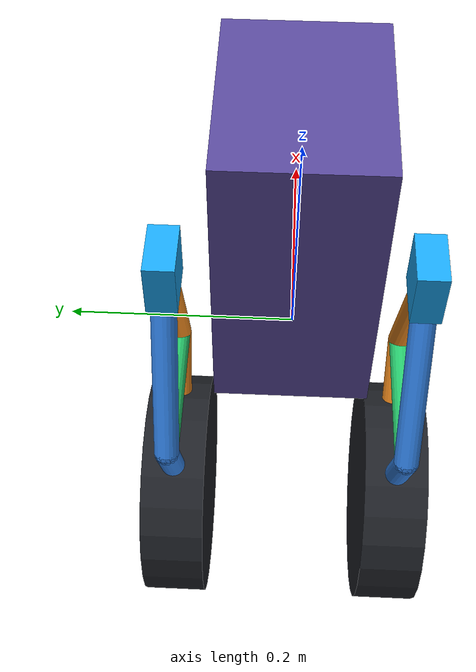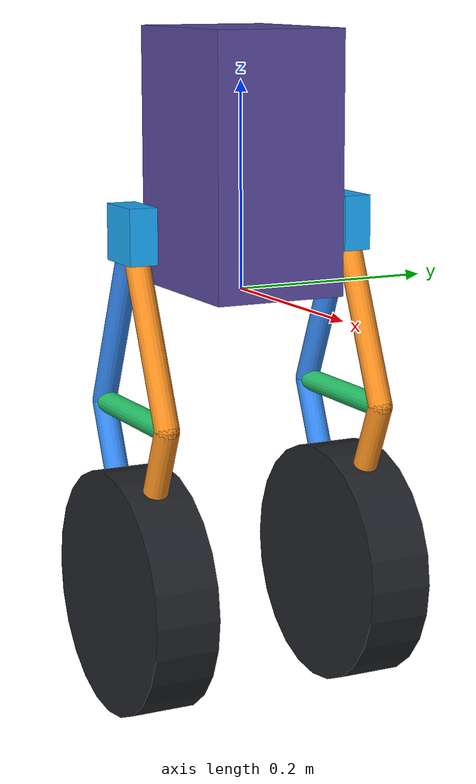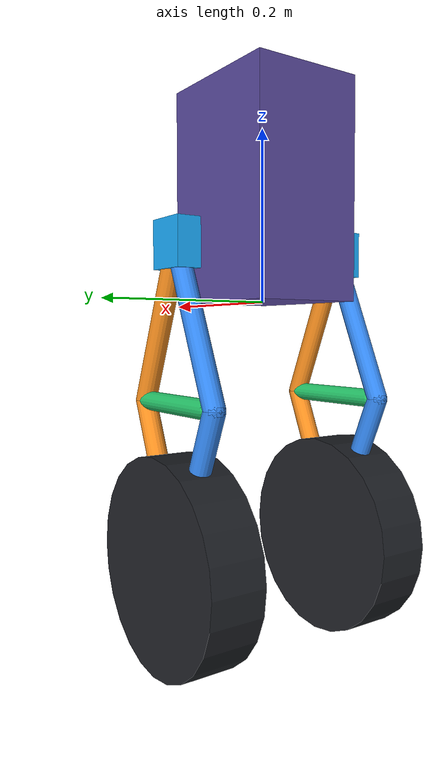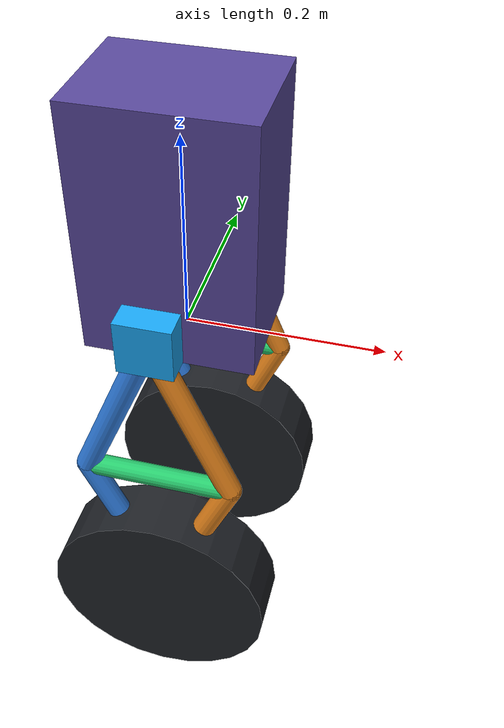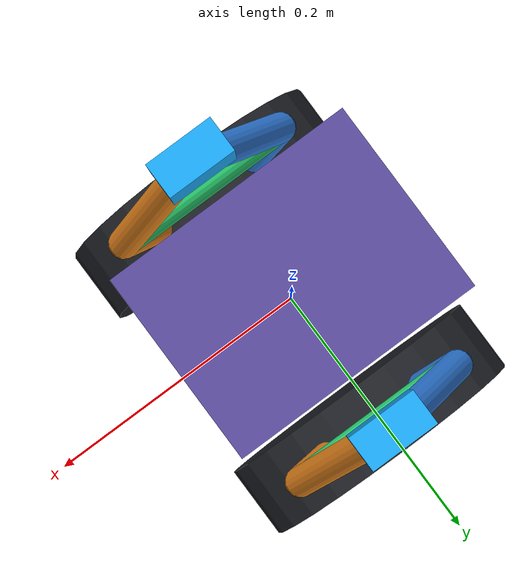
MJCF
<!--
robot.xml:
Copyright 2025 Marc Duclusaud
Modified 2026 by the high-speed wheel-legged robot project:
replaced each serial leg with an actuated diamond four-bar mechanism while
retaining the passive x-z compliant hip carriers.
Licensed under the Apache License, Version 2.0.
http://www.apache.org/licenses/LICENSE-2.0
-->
<mujoco model="upkie_extreme_terrain">
  <include file="../four_bar/robot.xml"/>
  <visual>
    <headlight diffuse="0.7 0.7 0.7" ambient="0.35 0.35 0.35"/>
    <rgba haze="0.14 0.20 0.28 1"/>
    <global offwidth="960" offheight="540" azimuth="120" elevation="-18"/>
  </visual>
  <asset>
    <hfield name="extreme_heightfield" file="heightfields/extreme.png"
            size="10.000 2.000 0.36000 0.10"/>
    <texture type="skybox" builtin="gradient" rgb1="0.38 0.52 0.70"
             rgb2="0.04 0.05 0.07" width="512" height="3072"/>
    <texture type="2d" name="extreme_grid" builtin="checker" mark="edge"
             rgb1="0.52 0.42 0.24" rgb2="0.27 0.20 0.10"
             markrgb="0.95 0.88 0.64" width="512" height="512"/>
    <material name="extreme_ground" texture="extreme_grid"
              texuniform="true" texrepeat="20 4" reflectance="0.08"/>
  </asset>
  <worldbody>
    <light pos="-2 -2 4" dir="0.2 0.2 -1" directional="true"/>
    <geom name="terrain" type="hfield" hfield="extreme_heightfield"
          pos="0 0 -0.18070588" material="extreme_ground"
          group="3" friction="1.1 0.02 0.002" condim="3"/>
    <geom name="extreme_transverse_log_00" type="cylinder" pos="-4.498979 0.000000 0.150165" size="0.082211 0.883136" quat="0.70710678 0.70710678 0.00000000 0.00000000" group="3" rgba="0.82 0.32 0.10 1" friction="1.2 0.02 0.002" condim="3"/>
    <geom name="extreme_transverse_log_01" type="cylinder" pos="-0.720820 0.000000 0.066129" size="0.091999 1.143749" quat="0.70710678 0.70710678 0.00000000 0.00000000" group="3" rgba="0.82 0.32 0.10 1" friction="1.2 0.02 0.002" condim="3"/>
    <geom name="extreme_transverse_log_02" type="cylinder" pos="2.864084 0.000000 0.119723" size="0.099850 0.995316" quat="0.70710678 0.70710678 0.00000000 0.00000000" group="3" rgba="0.82 0.32 0.10 1" friction="1.2 0.02 0.002" condim="3"/>
    <geom name="extreme_transverse_log_03" type="cylinder" pos="6.367789 0.000000 0.078969" size="0.090666 0.815423" quat="0.70710678 0.70710678 0.00000000 0.00000000" group="3" rgba="0.82 0.32 0.10 1" friction="1.2 0.02 0.002" condim="3"/>
    <geom name="extreme_rock_box_00" type="box" pos="-0.431727 0.115577 0.085270" size="0.071165 0.067359 0.074999" quat="0.99464754 -0.05457008 -0.06950759 -0.05354504" group="3" rgba="0.82 0.32 0.10 1" friction="1.2 0.02 0.002" condim="3"/>
    <geom name="extreme_rock_box_01" type="box" pos="-2.903465 -0.264708 -0.010012" size="0.117414 0.117651 0.059944" quat="0.98481159 -0.01843191 0.09701297 -0.14281063" group="3" rgba="0.82 0.32 0.10 1" friction="1.2 0.02 0.002" condim="3"/>
    <geom name="extreme_rock_box_02" type="box" pos="-3.725351 -1.059964 0.003321" size="0.093311 0.155529 0.034076" quat="0.99511423 0.05422983 -0.05585823 -0.06071775" group="3" rgba="0.82 0.32 0.10 1" friction="1.2 0.02 0.002" condim="3"/>
    <geom name="extreme_rock_box_03" type="box" pos="1.417523 0.324007 0.086502" size="0.078389 0.077151 0.062563" quat="0.99084251 -0.06934926 -0.04598724 0.10633428" group="3" rgba="0.82 0.32 0.10 1" friction="1.2 0.02 0.002" condim="3"/>
    <geom name="extreme_rock_box_04" type="box" pos="-1.061636 0.412195 0.123922" size="0.142630 0.104911 0.058561" quat="0.99158717 0.06365997 -0.09895208 -0.05395160" group="3" rgba="0.82 0.32 0.10 1" friction="1.2 0.02 0.002" condim="3"/>
    <geom name="extreme_rock_box_05" type="box" pos="-2.568887 0.172922 0.005236" size="0.140650 0.146486 0.064299" quat="0.99369752 -0.06960918 0.06574093 0.05829179" group="3" rgba="0.82 0.32 0.10 1" friction="1.2 0.02 0.002" condim="3"/>
    <geom name="extreme_rock_box_06" type="box" pos="2.487425 -0.430484 0.050144" size="0.084722 0.111047 0.069331" quat="0.98150391 0.05680618 0.07376793 0.16727649" group="3" rgba="0.82 0.32 0.10 1" friction="1.2 0.02 0.002" condim="3"/>
    <geom name="extreme_rock_box_07" type="box" pos="5.060066 0.312029 0.084071" size="0.089050 0.141953 0.083805" quat="0.99509397 -0.04629801 0.02611801 0.08344065" group="3" rgba="0.82 0.32 0.10 1" friction="1.2 0.02 0.002" condim="3"/>
    <geom name="extreme_rock_box_08" type="box" pos="-0.154685 -0.889367 0.047979" size="0.121366 0.069217 0.040626" quat="0.99581812 0.05359743 0.04557399 0.05828035" group="3" rgba="0.82 0.32 0.10 1" friction="1.2 0.02 0.002" condim="3"/>
    <geom name="extreme_rock_box_09" type="box" pos="-1.931924 0.423369 0.038678" size="0.124712 0.068239 0.067065" quat="0.99590903 0.05530675 0.03215821 0.06381388" group="3" rgba="0.82 0.32 0.10 1" friction="1.2 0.02 0.002" condim="3"/>
    <geom name="extreme_rock_box_10" type="box" pos="4.712055 0.044735 0.069470" size="0.141528 0.078072 0.081912" quat="0.99649194 -0.02453840 0.05153285 -0.06120497" group="3" rgba="0.82 0.32 0.10 1" friction="1.2 0.02 0.002" condim="3"/>
    <geom name="extreme_rock_box_11" type="box" pos="1.255405 0.865641 0.127686" size="0.137177 0.178679 0.055832" quat="0.98140953 0.00362531 -0.07907058 0.17484289" group="3" rgba="0.82 0.32 0.10 1" friction="1.2 0.02 0.002" condim="3"/>
    <geom name="extreme_rock_box_12" type="box" pos="-2.821933 -0.785487 0.032998" size="0.060000 0.119508 0.055126" quat="0.99456268 0.01204893 -0.07426492 -0.07200424" group="3" rgba="0.82 0.32 0.10 1" friction="1.2 0.02 0.002" condim="3"/>
    <geom name="extreme_rock_box_13" type="box" pos="1.825026 0.006496 0.119292" size="0.106114 0.063777 0.034134" quat="0.98557869 -0.03777256 -0.06745438 0.15052506" group="3" rgba="0.82 0.32 0.10 1" friction="1.2 0.02 0.002" condim="3"/>
    <geom name="extreme_rock_box_14" type="box" pos="4.410562 0.811605 0.053013" size="0.087867 0.189736 0.047728" quat="0.97574228 0.03384767 -0.01811213 0.21553025" group="3" rgba="0.82 0.32 0.10 1" friction="1.2 0.02 0.002" condim="3"/>
    <geom name="extreme_rock_box_15" type="box" pos="0.663652 1.013178 0.018229" size="0.131930 0.075570 0.038393" quat="0.99742176 -0.04970641 0.02907824 -0.04282002" group="3" rgba="0.82 0.32 0.10 1" friction="1.2 0.02 0.002" condim="3"/>
  </worldbody>
</mujoco>

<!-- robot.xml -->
<mujoco model="upkie_active_four_bar">
  <compiler angle="radian" autolimits="true"/>
  <option timestep="0.001" integrator="implicitfast" iterations="60"
          ls_iterations="20" noslip_iterations="4"/>

  <default>
    <joint armature="0.005" damping="0.15"/>
    <geom friction="0.8 0.01 0.001" solref="0.004 1"/>
    <default class="link">
      <geom type="capsule" size="0.012" contype="0" conaffinity="0"
            rgba="0.82 0.84 0.88 1"/>
    </default>
    <default class="wheel">
      <geom type="cylinder" size="0.120 0.032" friction="1.1 0.02 0.001"
            rgba="0.12 0.13 0.15 1"/>
    </default>
  </default>

  <worldbody>
    <body name="trunk" pos="0 0 0">
      <freejoint name="trunk_freejoint"/>
      <inertial pos="0.00014 0.00060 0.08771" mass="2.6415"
                fullinertia="0.0217792 0.0127537 0.0147651 6.48606e-05 0.000263842 -3.98875e-05"/>
      <geom name="trunk_collision" type="box" pos="0 0 0.125"
            size="0.085 0.0652 0.125" rgba="0.34 0.28 0.60 1"/>
      <site name="imu" pos="-0.04095 0.04000 0.13025" size="0.006"/>

      <!-- Left x-z compliant carrier. -->
      <body name="left_hip_carrier" pos="0 0.1137 0.0602">
        <joint name="left_hip_slide_x" type="slide" axis="1 0 0"
               range="-0.020 0.020" stiffness="3000" damping="100"
               springref="0" armature="0.02"/>
        <joint name="left_hip_slide_z" type="slide" axis="0 0 1"
               range="-0.025 0.025" stiffness="7000" damping="180"
               springref="0" armature="0.02"/>
        <inertial pos="0 0 0" mass="0.08" diaginertia="0.00008 0.00008 0.00008"/>
        <geom type="box" size="0.027 0.014 0.027" density="0"
              contype="0" conaffinity="0" rgba="0.10 0.65 0.95 1"/>
        <site name="left_hip_origin" size="0.008" rgba="0.10 0.65 0.95 1"/>

        <body name="left_front_upper" pos="0 0 0">
          <joint name="left_hip" type="hinge" axis="0 1 0" range="-0.65 0.65"/>
          <geom class="link" fromto="0 0 0 0.075 0 -0.174" mass="0.24"
                rgba="0.95 0.55 0.12 1"/>
          <site name="left_front_knee" pos="0.075 0 -0.174" size="0.009"
                rgba="0.95 0.55 0.12 1"/>

          <body name="left_front_lower" pos="0.075 0 -0.174">
            <joint name="left_front_knee_hinge" type="hinge" axis="0 1 0"/>
            <geom class="link" fromto="0 0 0 -0.075 0 -0.174" mass="0.21"
                  rgba="0.95 0.55 0.12 1"/>

            <!-- Telescopic crossbar points from front knee toward rear knee. -->
            <body name="left_strut_outer" quat="0 0 0 1">
              <joint name="left_strut_angle" type="hinge" axis="0 1 0"/>
              <geom name="left_strut_sleeve" type="capsule"
                    fromto="0 0 0 0.140 0 0" size="0.011"
                    mass="0.15" contype="0" conaffinity="0"
                    rgba="0.15 0.78 0.42 1"/>
              <site name="left_strut_sleeve_end" pos="0.140 0 0" size="0.004"/>
              <body name="left_strut_middle" pos="0.050 0 0">
                <joint name="left_strut_extension" type="slide" axis="1 0 0"
                       range="-0.020 0.094" stiffness="1600" damping="100"
                       springref="0" armature="0.03"/>
                <geom name="left_strut_middle_sleeve" type="capsule"
                      fromto="-0.040 0 0 0.100 0 0" size="0.008"
                      mass="0.07" contype="0" conaffinity="0"
                      rgba="0.85 0.95 0.88 1"/>
                <site name="left_strut_middle_rear" pos="-0.040 0 0" size="0.004"/>
                <site name="left_strut_middle_end" pos="0.100 0 0" size="0.004"/>
                <body name="left_strut_inner" pos="0.050 0 0">
                  <joint name="left_strut_extension_stage2" type="slide" axis="1 0 0"
                         range="-0.020 0.094" stiffness="1600" damping="100"
                         springref="0" armature="0.03"/>
                  <geom name="left_strut_rod" type="capsule"
                        fromto="-0.070 0 0 0.050 0 0" size="0.0055"
                        mass="0.03" contype="0" conaffinity="0"
                        rgba="0.98 0.72 0.20 1"/>
                  <site name="left_strut_rod_rear" pos="-0.070 0 0" size="0.004"/>
                  <site name="left_strut_endpoint" pos="0.050 0 0" size="0.008"
                        rgba="0.15 0.78 0.42 1"/>
                </body>
              </body>
            </body>

            <body name="left_wheel_node" pos="-0.075 0 -0.174">
              <joint name="left_front_bottom_hinge" type="hinge" axis="0 1 0"/>
              <inertial pos="0 0 0" mass="0.02" diaginertia="0.00002 0.00002 0.00002"/>
              <site name="left_bottom_closure" size="0.008"/>
              <body name="left_wheel">
                <joint name="left_wheel_joint" type="hinge" axis="0 1 0"
                       damping="0.005"/>
                <geom class="wheel" quat="0.7071068 0.7071068 0 0" mass="0.2385"/>
              </body>
            </body>
          </body>
        </body>

        <body name="left_rear_upper" pos="0 0 0">
          <joint name="left_rear_hip_hinge" type="hinge" axis="0 1 0"/>
          <geom class="link" fromto="0 0 0 -0.075 0 -0.174" mass="0.24"
                rgba="0.20 0.52 0.92 1"/>
          <site name="left_rear_knee" pos="-0.075 0 -0.174" size="0.009"
                rgba="0.20 0.52 0.92 1"/>
          <body name="left_rear_lower" pos="-0.075 0 -0.174">
            <joint name="left_rear_knee_hinge" type="hinge" axis="0 1 0"/>
            <geom class="link" fromto="0 0 0 0.075 0 -0.174" mass="0.21"
                  rgba="0.20 0.52 0.92 1"/>
            <site name="left_rear_bottom_endpoint" pos="0.075 0 -0.174" size="0.008"/>
          </body>
        </body>
      </body>

      <!-- Right x-z compliant carrier. -->
      <body name="right_hip_carrier" pos="0 -0.1137 0.0602">
        <joint name="right_hip_slide_x" type="slide" axis="1 0 0"
               range="-0.020 0.020" stiffness="3000" damping="100"
               springref="0" armature="0.02"/>
        <joint name="right_hip_slide_z" type="slide" axis="0 0 1"
               range="-0.025 0.025" stiffness="7000" damping="180"
               springref="0" armature="0.02"/>
        <inertial pos="0 0 0" mass="0.08" diaginertia="0.00008 0.00008 0.00008"/>
        <geom type="box" size="0.027 0.014 0.027" density="0"
              contype="0" conaffinity="0" rgba="0.10 0.65 0.95 1"/>
        <site name="right_hip_origin" size="0.008" rgba="0.10 0.65 0.95 1"/>

        <body name="right_front_upper" pos="0 0 0">
          <joint name="right_hip" type="hinge" axis="0 1 0" range="-0.65 0.65"/>
          <geom class="link" fromto="0 0 0 0.075 0 -0.174" mass="0.24"
                rgba="0.95 0.55 0.12 1"/>
          <site name="right_front_knee" pos="0.075 0 -0.174" size="0.009"
                rgba="0.95 0.55 0.12 1"/>

          <body name="right_front_lower" pos="0.075 0 -0.174">
            <joint name="right_front_knee_hinge" type="hinge" axis="0 1 0"/>
            <geom class="link" fromto="0 0 0 -0.075 0 -0.174" mass="0.21"
                  rgba="0.95 0.55 0.12 1"/>

            <body name="right_strut_outer" quat="0 0 0 1">
              <joint name="right_strut_angle" type="hinge" axis="0 1 0"/>
              <geom name="right_strut_sleeve" type="capsule"
                    fromto="0 0 0 0.140 0 0" size="0.011"
                    mass="0.15" contype="0" conaffinity="0"
                    rgba="0.15 0.78 0.42 1"/>
              <site name="right_strut_sleeve_end" pos="0.140 0 0" size="0.004"/>
              <body name="right_strut_middle" pos="0.050 0 0">
                <joint name="right_strut_extension" type="slide" axis="1 0 0"
                       range="-0.020 0.094" stiffness="1600" damping="100"
                       springref="0" armature="0.03"/>
                <geom name="right_strut_middle_sleeve" type="capsule"
                      fromto="-0.040 0 0 0.100 0 0" size="0.008"
                      mass="0.07" contype="0" conaffinity="0"
                      rgba="0.85 0.95 0.88 1"/>
                <site name="right_strut_middle_rear" pos="-0.040 0 0" size="0.004"/>
                <site name="right_strut_middle_end" pos="0.100 0 0" size="0.004"/>
                <body name="right_strut_inner" pos="0.050 0 0">
                  <joint name="right_strut_extension_stage2" type="slide" axis="1 0 0"
                         range="-0.020 0.094" stiffness="1600" damping="100"
                         springref="0" armature="0.03"/>
                  <geom name="right_strut_rod" type="capsule"
                        fromto="-0.070 0 0 0.050 0 0" size="0.0055"
                        mass="0.03" contype="0" conaffinity="0"
                        rgba="0.98 0.72 0.20 1"/>
                  <site name="right_strut_rod_rear" pos="-0.070 0 0" size="0.004"/>
                  <site name="right_strut_endpoint" pos="0.050 0 0" size="0.008"
                        rgba="0.15 0.78 0.42 1"/>
                </body>
              </body>
            </body>

            <body name="right_wheel_node" pos="-0.075 0 -0.174">
              <joint name="right_front_bottom_hinge" type="hinge" axis="0 1 0"/>
              <inertial pos="0 0 0" mass="0.02" diaginertia="0.00002 0.00002 0.00002"/>
              <site name="right_bottom_closure" size="0.008"/>
              <body name="right_wheel">
                <joint name="right_wheel_joint" type="hinge" axis="0 1 0"
                       damping="0.005"/>
                <geom class="wheel" quat="0.7071068 0.7071068 0 0" mass="0.2385"/>
              </body>
            </body>
          </body>
        </body>

        <body name="right_rear_upper" pos="0 0 0">
          <joint name="right_rear_hip_hinge" type="hinge" axis="0 1 0"/>
          <geom class="link" fromto="0 0 0 -0.075 0 -0.174" mass="0.24"
                rgba="0.20 0.52 0.92 1"/>
          <site name="right_rear_knee" pos="-0.075 0 -0.174" size="0.009"
                rgba="0.20 0.52 0.92 1"/>
          <body name="right_rear_lower" pos="-0.075 0 -0.174">
            <joint name="right_rear_knee_hinge" type="hinge" axis="0 1 0"/>
            <geom class="link" fromto="0 0 0 0.075 0 -0.174" mass="0.21"
                  rgba="0.20 0.52 0.92 1"/>
            <site name="right_rear_bottom_endpoint" pos="0.075 0 -0.174" size="0.008"/>
          </body>
        </body>
      </body>
    </body>
  </worldbody>

  <equality>
    <connect name="left_four_bar_closure"
             site1="left_rear_bottom_endpoint" site2="left_bottom_closure"
             solref="0.002 1" solimp="0.95 0.99 0.001"/>
    <connect name="left_strut_closure"
             site1="left_strut_endpoint" site2="left_rear_knee"
             solref="0.002 1" solimp="0.95 0.99 0.001"/>
    <joint name="left_strut_stage_sync"
           joint1="left_strut_extension" joint2="left_strut_extension_stage2"
           polycoef="0 1 0 0 0" solref="0.0002 1"
           solimp="0.999 0.9999 0.0001"/>
    <connect name="right_four_bar_closure"
             site1="right_rear_bottom_endpoint" site2="right_bottom_closure"
             solref="0.002 1" solimp="0.95 0.99 0.001"/>
    <connect name="right_strut_closure"
             site1="right_strut_endpoint" site2="right_rear_knee"
             solref="0.002 1" solimp="0.95 0.99 0.001"/>
    <joint name="right_strut_stage_sync"
           joint1="right_strut_extension" joint2="right_strut_extension_stage2"
           polycoef="0 1 0 0 0" solref="0.0002 1"
           solimp="0.999 0.9999 0.0001"/>
  </equality>

  <actuator>
    <position name="left_hip" joint="left_hip" kp="30" kv="1.5"
              ctrlrange="-0.65 0.65" forcerange="-16 16"/>
    <position name="left_strut" joint="left_strut_extension" kp="8000" kv="100"
              ctrlrange="-0.040 0.165" forcerange="-700 700"/>
    <motor name="left_wheel" joint="left_wheel_joint"
           ctrlrange="-6 6" forcerange="-6 6"/>
    <position name="right_hip" joint="right_hip" kp="30" kv="1.5"
              ctrlrange="-0.65 0.65" forcerange="-16 16"/>
    <position name="right_strut" joint="right_strut_extension" kp="8000" kv="100"
              ctrlrange="-0.040 0.165" forcerange="-700 700"/>
    <motor name="right_wheel" joint="right_wheel_joint"
           ctrlrange="-6 6" forcerange="-6 6"/>
  </actuator>

  <sensor>
    <framequat name="imu_quat" objtype="site" objname="imu"/>
    <gyro name="imu_gyro" site="imu"/>
    <velocimeter name="imu_velocity" site="imu"/>
    <jointpos name="left_strut_pos" joint="left_strut_extension"/>
    <jointvel name="left_strut_vel" joint="left_strut_extension"/>
    <jointpos name="right_strut_pos" joint="right_strut_extension"/>
    <jointvel name="right_strut_vel" joint="right_strut_extension"/>
    <jointpos name="left_hip_slide_x_pos" joint="left_hip_slide_x"/>
    <jointpos name="left_hip_slide_z_pos" joint="left_hip_slide_z"/>
    <jointpos name="right_hip_slide_x_pos" joint="right_hip_slide_x"/>
    <jointpos name="right_hip_slide_z_pos" joint="right_hip_slide_z"/>
  </sensor>
</mujoco>
